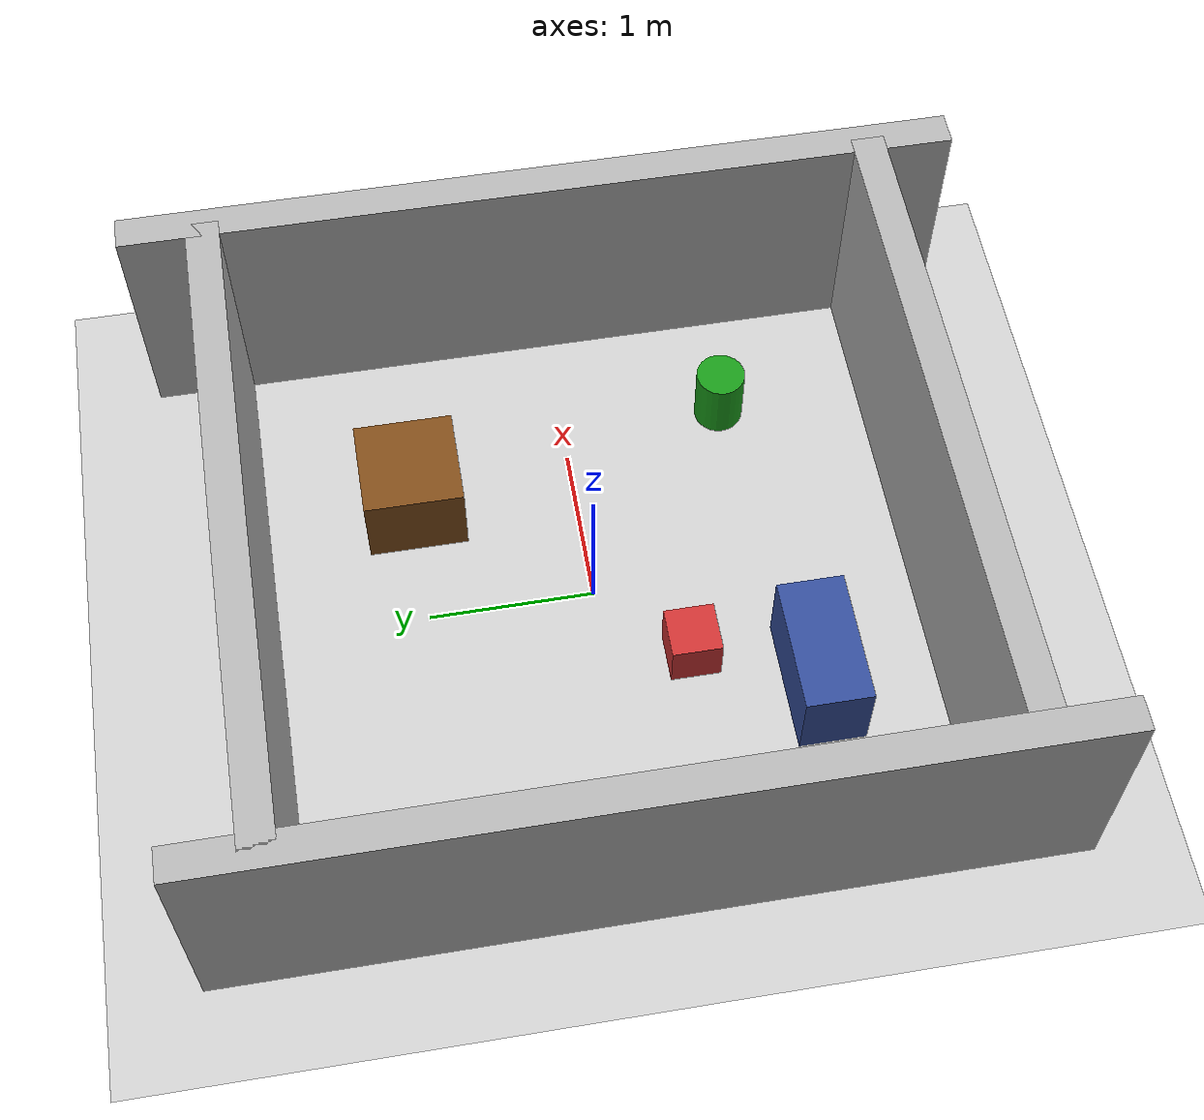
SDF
<?xml version="1.0" ?>
<sdf version="1.8">
  <world name="living_room">
    <gravity>0 0 -9.81</gravity>

    <physics name="1ms" type="dart">
      <max_step_size>0.001</max_step_size>
      <real_time_factor>1.0</real_time_factor>
      <dart>
        <collision_detector>bullet</collision_detector>
      </dart>
    </physics>

    <plugin
      filename="gz-sim-physics-system"
      name="gz::sim::systems::Physics">
    </plugin>
    <plugin
      filename="gz-sim-sensors-system"
      name="gz::sim::systems::Sensors">
      <render_engine>ogre2</render_engine>
    </plugin>
    <plugin
      filename="gz-sim-contact-system"
      name="gz::sim::systems::Contact">
    </plugin>
    <plugin
      filename="gz-sim-user-commands-system"
      name="gz::sim::systems::UserCommands">
    </plugin>
    <plugin
      filename="gz-sim-scene-broadcaster-system"
      name="gz::sim::systems::SceneBroadcaster">
    </plugin>

    <scene>
      <ambient>0.4 0.4 0.4</ambient>
      <background>0.7 0.7 0.7</background>
    </scene>

    <light type="directional" name="sun">
      <pose>0 0 10 0 0 0</pose>
      <diffuse>0.8 0.8 0.8 1</diffuse>
      <specular>0.2 0.2 0.2 1</specular>
      <direction>-0.5 0.1 -1</direction>
    </light>

    <model name="ground_plane">
      <static>true</static>
      <link name="link">
        <collision name="collision">
          <geometry>
            <plane>
              <normal>0 0 1</normal>
            </plane>
          </geometry>
        </collision>
        <visual name="visual">
          <geometry>
            <plane>
              <normal>0 0 1</normal>
              <size>100 100</size>
            </plane>
          </geometry>
          <material>
            <ambient>0.8 0.8 0.8 1</ambient>
            <diffuse>0.8 0.8 0.8 1</diffuse>
          </material>
        </visual>
      </link>
    </model>

    <model name="wall_01">
      <static>true</static>
      <pose>2.0 0 0.75 0 0 0</pose>
      <link name="link">
        <collision name="collision">
          <geometry>
            <box>
              <size>0.2 5.0 1.5</size>
            </box>
          </geometry>
        </collision>
        <visual name="visual">
          <geometry>
            <box>
              <size>0.2 5.0 1.5</size>
            </box>
          </geometry>
          <material>
            <ambient>0.7 0.7 0.7</ambient>
            <diffuse>0.7 0.7 0.7</diffuse>
          </material>
        </visual>
      </link>
    </model>

    <model name="wall_02">
      <static>true</static>
      <pose>-2.0 0 0.75 0 0 0</pose>
      <link name="link">
        <collision name="collision">
          <geometry>
            <box>
              <size>0.2 5.0 1.5</size>
            </box>
          </geometry>
        </collision>
        <visual name="visual">
          <geometry>
            <box>
              <size>0.2 5.0 1.5</size>
            </box>
          </geometry>
          <material>
            <ambient>0.7 0.7 0.7</ambient>
            <diffuse>0.7 0.7 0.7</diffuse>
          </material>
        </visual>
      </link>
    </model>

    <model name="wall_03">
      <static>true</static>
      <pose>0 2.0 0.75 0 0 1.5708</pose>
      <link name="link">
        <collision name="collision">
          <geometry>
            <box>
              <size>0.2 4.0 1.5</size>
            </box>
          </geometry>
        </collision>
        <visual name="visual">
          <geometry>
            <box>
              <size>0.2 4.0 1.5</size>
            </box>
          </geometry>
          <material>
            <ambient>0.7 0.7 0.7</ambient>
            <diffuse>0.7 0.7 0.7</diffuse>
          </material>
        </visual>
      </link>
    </model>

    <model name="wall_04">
      <static>true</static>
      <pose>0 -2.0 0.75 0 0 1.5708</pose>
      <link name="link">
        <collision name="collision">
          <geometry>
            <box>
              <size>0.2 4.0 1.5</size>
            </box>
          </geometry>
        </collision>
        <visual name="visual">
          <geometry>
            <box>
              <size>0.2 4.0 1.5</size>
            </box>
          </geometry>
          <material>
            <ambient>0.7 0.7 0.7</ambient>
            <diffuse>0.7 0.7 0.7</diffuse>
          </material>
        </visual>
      </link>
    </model>

    <model name="sofa">
      <static>true</static>
      <pose>-0.8 -1.2 0.25 0 0 0</pose>
      <link name="link">
        <collision name="collision">
          <geometry>
            <box>
              <size>0.8 0.4 0.5</size>
            </box>
          </geometry>
        </collision>
        <visual name="visual">
          <geometry>
            <box>
              <size>0.8 0.4 0.5</size>
            </box>
          </geometry>
          <material>
            <ambient>0.2 0.3 0.6</ambient>
            <diffuse>0.2 0.3 0.6</diffuse>
          </material>
        </visual>
      </link>
    </model>

    <model name="table">
      <static>true</static>
      <pose>0.8 1.0 0.25 0 0 0</pose>
      <link name="link">
        <collision name="collision">
          <geometry>
            <box>
              <size>0.6 0.6 0.5</size>
            </box>
          </geometry>
        </collision>
        <visual name="visual">
          <geometry>
            <box>
              <size>0.6 0.6 0.5</size>
            </box>
          </geometry>
          <material>
            <ambient>0.5 0.3 0.1</ambient>
            <diffuse>0.5 0.3 0.1</diffuse>
          </material>
        </visual>
      </link>
    </model>

    <model name="obstacle_box">
      <static>true</static>
      <pose>-0.5 -0.5 0.15 0 0 0</pose>
      <link name="link">
        <collision name="collision">
          <geometry>
            <box>
              <size>0.3 0.3 0.3</size>
            </box>
          </geometry>
        </collision>
        <visual name="visual">
          <geometry>
            <box>
              <size>0.3 0.3 0.3</size>
            </box>
          </geometry>
          <material>
            <ambient>0.8 0.2 0.2</ambient>
            <diffuse>0.8 0.2 0.2</diffuse>
          </material>
        </visual>
      </link>
    </model>

    <model name="plant">
      <static>true</static>
      <pose>1.2 -1.0 0.2 0 0 0</pose>
      <link name="link">
        <collision name="collision">
          <geometry>
            <cylinder>
              <radius>0.15</radius>
              <length>0.4</length>
            </cylinder>
          </geometry>
        </collision>
        <visual name="visual">
          <geometry>
            <cylinder>
              <radius>0.15</radius>
              <length>0.4</length>
            </cylinder>
          </geometry>
          <material>
            <ambient>0.1 0.6 0.1</ambient>
            <diffuse>0.1 0.6 0.1</diffuse>
          </material>
        </visual>
      </link>
    </model>
  </world>
</sdf>
